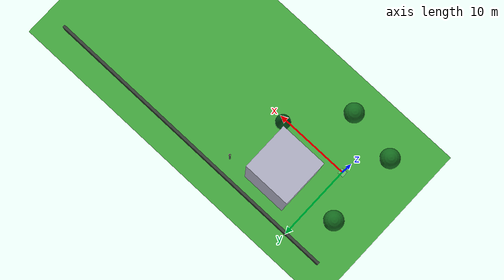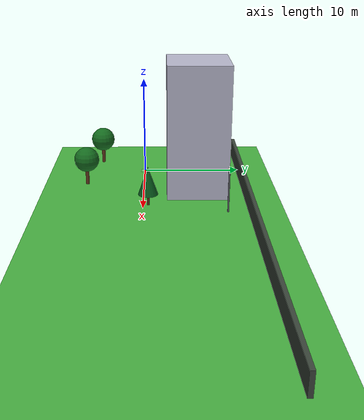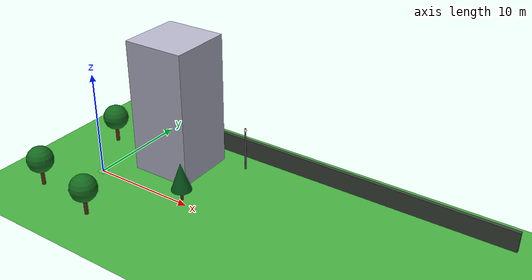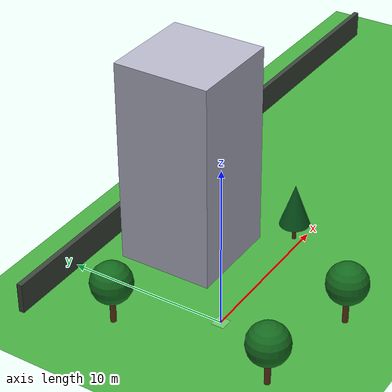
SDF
<sdf version="1.10">
 <world name="city_second">
  <model name="ground_plane">
   <static>true</static>
   <link name="link">
    <collision name="collision">
     <geometry><plane><normal>0 0 1</normal><size>45 46</size></plane></geometry>
    </collision>
    <visual name="visual">
     <geometry><plane><normal>0 0 1</normal><size>45 46</size></plane></geometry>
     <material>
      <ambient>0.280000001 0.689999998 0.25999999 1</ambient>
      <diffuse>0.280000001 0.689999998 0.25999999 1</diffuse>
      <specular>0.0299999993 0.0299999993 0.0299999993 1</specular>
     </material>
    </visual>
    <inertial>
     <mass>1</mass>
     <inertia><ixx>1</ixx><ixy>0</ixy><ixz>0</ixz><iyy>1</iyy><iyz>0</iyz><izz>1</izz></inertia>
    </inertial>
   </link>
   <pose>15.5 -11 0 0 0 0</pose>
  </model>
  <model name="house_2_2">
   <static>true</static>
   <pose>5.2000000000000002 5.2999999999999998 6.5 0 0 0</pose>
   <link name="link">
    <collision name="collision"><geometry><box><size>6 6 13</size></box></geometry></collision>
    <visual name="visual">
     <geometry><box><size>6 6 13</size></box></geometry>
     <material>
      <ambient>0.720000029 0.720000029 0.800000012 1</ambient>
      <diffuse>0.720000029 0.720000029 0.800000012 1</diffuse>
      <specular>0.0299999993 0.0299999993 0.0299999993 1</specular>
     </material>
    </visual>
    <inertial>
     <mass>1</mass>
     <inertia><ixx>1</ixx><ixy>0</ixy><ixz>0</ixz><iyy>1</iyy><iyz>0</iyz><izz>1</izz></inertia>
    </inertial>
   </link>
  </model>
  <model name="robot_spawn_sidewalk_hint">
   <static>true</static>
   <pose>0 0 0.021000000000000001 0 0 0</pose>
   <link name="link">
    <visual name="visual">
     <geometry><box><size>0.80000000000000004 0.80000000000000004 0.0050000000000000001</size></box></geometry>
     <material>
      <ambient>0.550000012 0.860000014 0.569999993 0.649999976</ambient>
      <diffuse>0.550000012 0.860000014 0.569999993 0.649999976</diffuse>
      <specular>0 0 0 1</specular>
     </material>
     <transparency>0.34999999999999998</transparency>
    </visual>
    <inertial>
     <mass>1</mass>
     <inertia><ixx>1</ixx><ixy>0</ixy><ixz>0</ixz><iyy>1</iyy><iyz>0</iyz><izz>1</izz></inertia>
    </inertial>
   </link>
  </model>
  <model name="lamp_1_2_10">
   <static>true</static>
   <pose>10.9572 7.9459400000000002 2.2000000000000002 0 0 0</pose>
   <link name="link">
    <collision name="collision">
     <geometry>
      <cylinder><radius>0.080000000000000002</radius><length>4.4000000000000004</length></cylinder>
     </geometry>
    </collision>
    <visual name="pole">
     <geometry>
      <cylinder><radius>0.080000000000000002</radius><length>4.4000000000000004</length></cylinder>
     </geometry>
     <material>
      <ambient>0.349999994 0.360000014 0.379999995 1</ambient>
      <diffuse>0.349999994 0.360000014 0.379999995 1</diffuse>
      <specular>0.0299999993 0.0299999993 0.0299999993 1</specular>
     </material>
    </visual>
    <visual name="lamp_head">
     <pose>0 0 2 0 0 0</pose>
     <geometry><sphere><radius>0.14000000000000001</radius></sphere></geometry>
     <material>
      <ambient>0.959999979 0.939999998 0.779999971 1</ambient>
      <diffuse>0.959999979 0.939999998 0.779999971 1</diffuse>
      <specular>0.0299999993 0.0299999993 0.0299999993 1</specular>
     </material>
    </visual>
    <inertial>
     <mass>1</mass>
     <inertia><ixx>1</ixx><ixy>0</ixy><ixz>0</ixz><iyy>1</iyy><iyz>0</iyz><izz>1</izz></inertia>
    </inertial>
   </link>
  </model>
  <model name="Oak tree">
   <static>true</static>
   <pose>-3.0260199999999999 5.1699000000000002 0 0 0 0</pose>
   <link name="link">
    <collision name="footprint">
     <pose>0 0 0.050000000000000003 0 0 0</pose>
     <geometry>
      <cylinder><radius>0.90000000000000002</radius><length>0.10000000000000001</length></cylinder>
     </geometry>
    </collision>
    <visual name="trunk">
     <pose>0 0 1.1000000000000001 0 0 0</pose>
     <geometry>
      <cylinder><radius>0.17999999999999999</radius><length>2.2000000000000002</length></cylinder>
     </geometry>
     <material>
      <ambient>0.379999995 0.219999999 0.109999999 1</ambient>
      <diffuse>0.379999995 0.219999999 0.109999999 1</diffuse>
      <specular>0.119999997 0.119999997 0.119999997 1</specular>
      <emissive>0 0 0 1</emissive>
     </material>
    </visual>
    <visual name="crown">
     <pose>0 0 2.6499999999999999 0 0 0</pose>
     <geometry><sphere><radius>1.25</radius></sphere></geometry>
     <material>
      <ambient>0.0799999982 0.419999987 0.119999997 1</ambient>
      <diffuse>0.0799999982 0.419999987 0.119999997 1</diffuse>
      <specular>0.119999997 0.119999997 0.119999997 1</specular>
      <emissive>0 0 0 1</emissive>
     </material>
    </visual>
    <inertial>
     <mass>1</mass>
     <inertia><ixx>1</ixx><ixy>0</ixy><ixz>0</ixz><iyy>1</iyy><iyz>0</iyz><izz>1</izz></inertia>
    </inertial>
   </link>
  </model>
  <model name="Oak tree_3">
   <static>true</static>
   <pose>3.7745000000000002 -5.8038400000000001 0 0 0 0</pose>
   <link name="link">
    <collision name="footprint">
     <pose>0 0 0.050000000000000003 0 0 0</pose>
     <geometry>
      <cylinder><radius>0.90000000000000002</radius><length>0.10000000000000001</length></cylinder>
     </geometry>
    </collision>
    <visual name="trunk">
     <pose>0 0 1.1000000000000001 0 0 0</pose>
     <geometry>
      <cylinder><radius>0.17999999999999999</radius><length>2.2000000000000002</length></cylinder>
     </geometry>
     <material>
      <ambient>0.379999995 0.219999999 0.109999999 1</ambient>
      <diffuse>0.379999995 0.219999999 0.109999999 1</diffuse>
      <specular>0.119999997 0.119999997 0.119999997 1</specular>
      <emissive>0 0 0 1</emissive>
     </material>
    </visual>
    <visual name="crown">
     <pose>0 0 2.6499999999999999 0 0 0</pose>
     <geometry><sphere><radius>1.25</radius></sphere></geometry>
     <material>
      <ambient>0.0799999982 0.419999987 0.119999997 1</ambient>
      <diffuse>0.0799999982 0.419999987 0.119999997 1</diffuse>
      <specular>0.119999997 0.119999997 0.119999997 1</specular>
      <emissive>0 0 0 1</emissive>
     </material>
    </visual>
    <inertial>
     <mass>1</mass>
     <inertia><ixx>1</ixx><ixy>0</ixy><ixz>0</ixz><iyy>1</iyy><iyz>0</iyz><izz>1</izz></inertia>
    </inertial>
   </link>
  </model>
  <model name="Oak tree_4">
   <static>true</static>
   <pose>-2.92401 -4.6859599999999997 0 0 0 0</pose>
   <link name="link">
    <collision name="footprint">
     <pose>0 0 0.050000000000000003 0 0 0</pose>
     <geometry>
      <cylinder><radius>0.90000000000000002</radius><length>0.10000000000000001</length></cylinder>
     </geometry>
    </collision>
    <visual name="trunk">
     <pose>0 0 1.1000000000000001 0 0 0</pose>
     <geometry>
      <cylinder><radius>0.17999999999999999</radius><length>2.2000000000000002</length></cylinder>
     </geometry>
     <material>
      <ambient>0.379999995 0.219999999 0.109999999 1</ambient>
      <diffuse>0.379999995 0.219999999 0.109999999 1</diffuse>
      <specular>0.119999997 0.119999997 0.119999997 1</specular>
      <emissive>0 0 0 1</emissive>
     </material>
    </visual>
    <visual name="crown">
     <pose>0 0 2.6499999999999999 0 0 0</pose>
     <geometry><sphere><radius>1.25</radius></sphere></geometry>
     <material>
      <ambient>0.0799999982 0.419999987 0.119999997 1</ambient>
      <diffuse>0.0799999982 0.419999987 0.119999997 1</diffuse>
      <specular>0.119999997 0.119999997 0.119999997 1</specular>
      <emissive>0 0 0 1</emissive>
     </material>
    </visual>
    <inertial>
     <mass>1</mass>
     <inertia><ixx>1</ixx><ixy>0</ixy><ixz>0</ixz><iyy>1</iyy><iyz>0</iyz><izz>1</izz></inertia>
    </inertial>
   </link>
  </model>
  <model name="Pine Tree_12">
   <static>true</static>
   <pose>9.2489500000000007 0.51215299999999997 0 0 0 0</pose>
   <link name="link">
    <collision name="footprint">
     <pose>0 0 0.050000000000000003 0 0 0</pose>
     <geometry>
      <cylinder><radius>0.65000000000000002</radius><length>0.10000000000000001</length></cylinder>
     </geometry>
    </collision>
    <visual name="trunk">
     <pose>0 0 0.90000000000000002 0 0 0</pose>
     <geometry><cylinder><radius>0.13</radius><length>1.8</length></cylinder></geometry>
     <material>
      <ambient>0.360000014 0.200000003 0.100000001 1</ambient>
      <diffuse>0.360000014 0.200000003 0.100000001 1</diffuse>
      <specular>0.119999997 0.119999997 0.119999997 1</specular>
      <emissive>0 0 0 1</emissive>
     </material>
    </visual>
    <visual name="crown">
     <pose>0 0 2.4500000000000002 0 0 0</pose>
     <geometry><cone><radius>0.94999999999999996</radius><length>2.7000000000000002</length></cone></geometry>
     <material>
      <ambient>0.0299999993 0.340000004 0.109999999 1</ambient>
      <diffuse>0.0299999993 0.340000004 0.109999999 1</diffuse>
      <specular>0.119999997 0.119999997 0.119999997 1</specular>
      <emissive>0 0 0 1</emissive>
     </material>
    </visual>
    <inertial>
     <mass>1</mass>
     <inertia><ixx>1</ixx><ixy>0</ixy><ixz>0</ixz><iyy>1</iyy><iyz>0</iyz><izz>1</izz></inertia>
    </inertial>
   </link>
  </model>
  <model name="crop_fence_north">
   <static>true</static>
   <pose>15.5 10.0 0.95 0 0 0</pose>
   <link name="link">
    <collision name="collision"><geometry><box><size>41.35 0.35 1.9</size></box></geometry></collision>
    <visual name="visual">
     <geometry><box><size>41.35 0.35 1.9</size></box></geometry>
     <material>
      <ambient>0.23 0.27 0.23 1</ambient>
      <diffuse>0.23 0.27 0.23 1</diffuse>
      <specular>0.03 0.03 0.03 1</specular>
     </material>
    </visual>
   </link>
  </model>
 </world>
</sdf>
